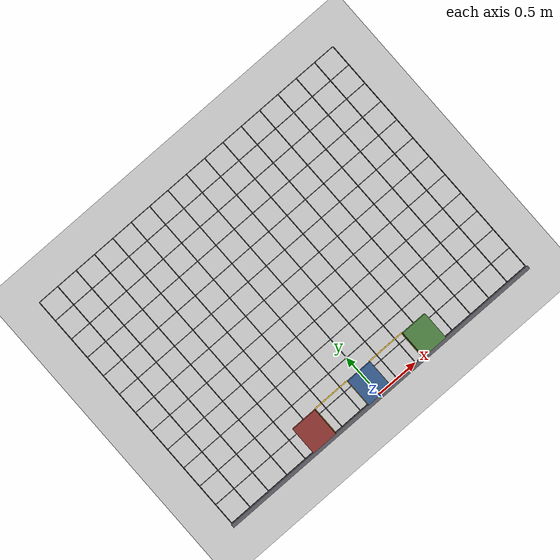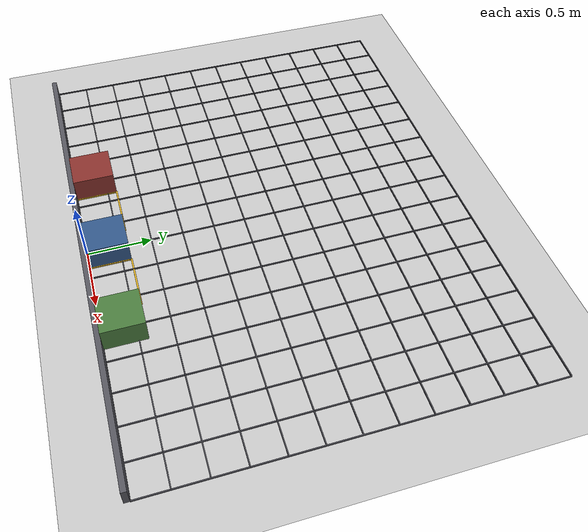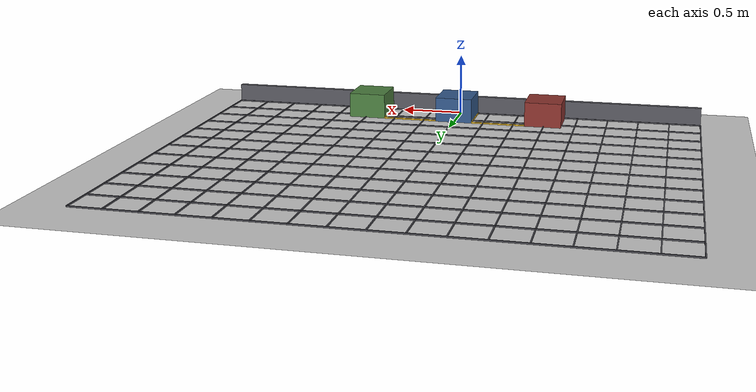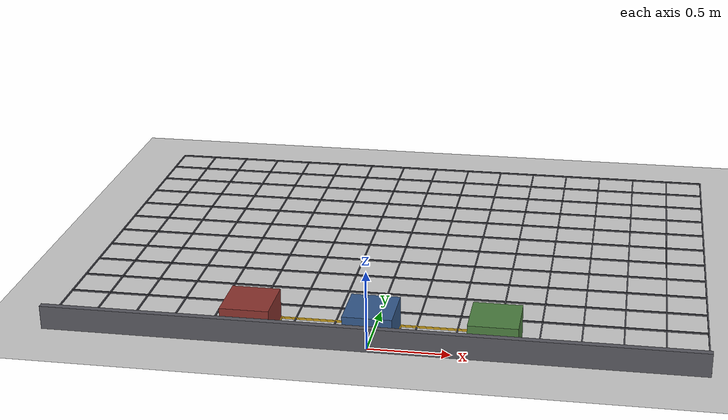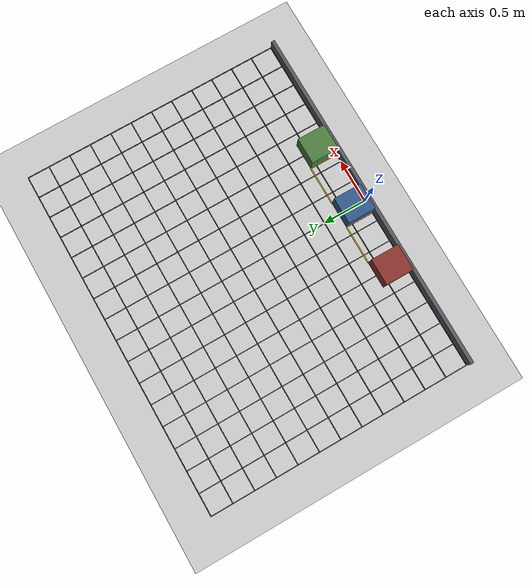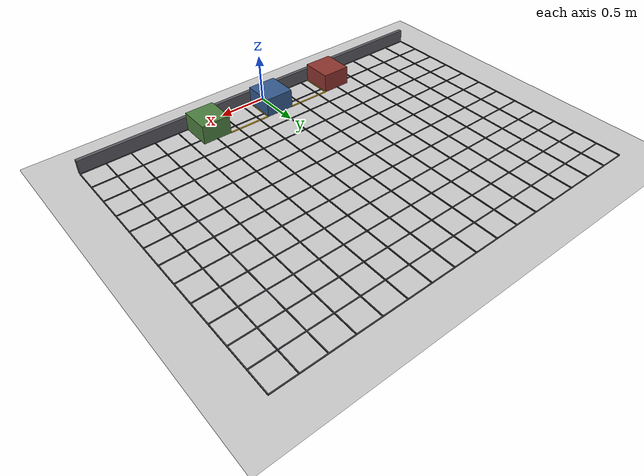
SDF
<?xml version='1.0'?>
<sdf version='1.6'>
  <world name='parking'>
    <include><uri>model://ground_plane</uri></include>
    <include><uri>model://sun</uri></include>

    <physics type='ode'>
      <real_time_update_rate>1000</real_time_update_rate>
      <max_step_size>0.001</max_step_size>
    </physics>

    <scene>
      <ambient>0.5 0.5 0.5 1</ambient>
      <shadows>false</shadows>
    </scene>
        <gui fullscreen='0'>
      <camera name='top_down'>
        <pose>0 0.16 2.2 0 1.5707 1.5707</pose>
        <projection_type>orthographic</projection_type>
      </camera>
    </gui>
        <plugin name='gazebo_ros_state' filename='libgazebo_ros_state.so'>
      <ros><namespace>/gazebo</namespace></ros>
      <update_rate>50</update_rate>
    </plugin>

  <model name='curb'>
    <static>true</static>
    <pose>0 -0.0200 0.075 0 0 0</pose>
    <link name='link'>
      <collision name='c'>
        <geometry><box><size>4.0 0.04 0.15</size></box></geometry>
      </collision>
      <visual name='v'>
        <geometry><box><size>4.0 0.04 0.15</size></box></geometry>
        <material>
          <ambient>0.35 0.35 0.38 1</ambient>
          <diffuse>0.35 0.35 0.38 1</diffuse>
        </material>
      </visual>
    </link>
  </model>
  <model name='parked_car_a'>
    <static>true</static>
    <pose>-0.7416 0.1600 0.1000 0 0 0</pose>
    <link name='link'>
      <collision name='c'>
        <geometry><box><size>0.3 0.32 0.2</size></box></geometry>
      </collision>
      <visual name='v'>
        <geometry><box><size>0.3 0.32 0.2</size></box></geometry>
        <material>
          <ambient>0.55 0.20 0.18 1</ambient>
          <diffuse>0.55 0.20 0.18 1</diffuse>
        </material>
      </visual>
    </link>
  </model>
  <model name='parked_car_b'>
    <static>true</static>
    <pose>0.0000 0.1600 0.1000 0 0 0</pose>
    <link name='link'>
      <collision name='c'>
        <geometry><box><size>0.3 0.32 0.2</size></box></geometry>
      </collision>
      <visual name='v'>
        <geometry><box><size>0.3 0.32 0.2</size></box></geometry>
        <material>
          <ambient>0.20 0.35 0.55 1</ambient>
          <diffuse>0.20 0.35 0.55 1</diffuse>
        </material>
      </visual>
    </link>
  </model>
  <model name='parked_car_c'>
    <static>true</static>
    <pose>0.7416 0.1600 0.1000 0 0 0</pose>
    <link name='link'>
      <collision name='c'>
        <geometry><box><size>0.3 0.32 0.2</size></box></geometry>
      </collision>
      <visual name='v'>
        <geometry><box><size>0.3 0.32 0.2</size></box></geometry>
        <material>
          <ambient>0.30 0.50 0.25 1</ambient>
          <diffuse>0.30 0.50 0.25 1</diffuse>
        </material>
      </visual>
    </link>
  </model>
  <model name='bay_mark_0_0'>
    <static>true</static>
    <pose>-0.3708 0.3200 0.006 0 0 0</pose>
    <link name='link'>
      <visual name='v'>
        <geometry><box><size>0.44160000000000005 0.012 0.01</size></box></geometry>
        <material>
          <ambient>0.95 0.75 0.15 1</ambient>
          <diffuse>0.95 0.75 0.15 1</diffuse>
        </material>
      </visual>
    </link>
  </model>
  <model name='bay_mark_0_1'>
    <static>true</static>
    <pose>-0.5916 0.1600 0.006 0 0 0</pose>
    <link name='link'>
      <visual name='v'>
        <geometry><box><size>0.012 0.32 0.01</size></box></geometry>
        <material>
          <ambient>0.95 0.75 0.15 1</ambient>
          <diffuse>0.95 0.75 0.15 1</diffuse>
        </material>
      </visual>
    </link>
  </model>
  <model name='bay_mark_0_2'>
    <static>true</static>
    <pose>-0.1500 0.1600 0.006 0 0 0</pose>
    <link name='link'>
      <visual name='v'>
        <geometry><box><size>0.012 0.32 0.01</size></box></geometry>
        <material>
          <ambient>0.95 0.75 0.15 1</ambient>
          <diffuse>0.95 0.75 0.15 1</diffuse>
        </material>
      </visual>
    </link>
  </model>
  <model name='bay_mark_1_0'>
    <static>true</static>
    <pose>0.3708 0.3200 0.006 0 0 0</pose>
    <link name='link'>
      <visual name='v'>
        <geometry><box><size>0.44160000000000005 0.012 0.01</size></box></geometry>
        <material>
          <ambient>0.95 0.75 0.15 1</ambient>
          <diffuse>0.95 0.75 0.15 1</diffuse>
        </material>
      </visual>
    </link>
  </model>
  <model name='bay_mark_1_1'>
    <static>true</static>
    <pose>0.1500 0.1600 0.006 0 0 0</pose>
    <link name='link'>
      <visual name='v'>
        <geometry><box><size>0.012 0.32 0.01</size></box></geometry>
        <material>
          <ambient>0.95 0.75 0.15 1</ambient>
          <diffuse>0.95 0.75 0.15 1</diffuse>
        </material>
      </visual>
    </link>
  </model>
  <model name='bay_mark_1_2'>
    <static>true</static>
    <pose>0.5916 0.1600 0.006 0 0 0</pose>
    <link name='link'>
      <visual name='v'>
        <geometry><box><size>0.012 0.32 0.01</size></box></geometry>
        <material>
          <ambient>0.95 0.75 0.15 1</ambient>
          <diffuse>0.95 0.75 0.15 1</diffuse>
        </material>
      </visual>
    </link>
  </model>
  <model name='grid_v_0'>
    <static>true</static>
    <pose>-2.0000 1.5000 0.006 0 0 0</pose>
    <link name='link'>
      <visual name='v'>
        <geometry><box><size>0.008 3.0 0.01</size></box></geometry>
        <material>
          <ambient>0.30 0.30 0.33 1</ambient>
          <diffuse>0.30 0.30 0.33 1</diffuse>
        </material>
      </visual>
    </link>
  </model>
  <model name='grid_v_1'>
    <static>true</static>
    <pose>-1.7500 1.5000 0.006 0 0 0</pose>
    <link name='link'>
      <visual name='v'>
        <geometry><box><size>0.008 3.0 0.01</size></box></geometry>
        <material>
          <ambient>0.30 0.30 0.33 1</ambient>
          <diffuse>0.30 0.30 0.33 1</diffuse>
        </material>
      </visual>
    </link>
  </model>
  <model name='grid_v_2'>
    <static>true</static>
    <pose>-1.5000 1.5000 0.006 0 0 0</pose>
    <link name='link'>
      <visual name='v'>
        <geometry><box><size>0.008 3.0 0.01</size></box></geometry>
        <material>
          <ambient>0.30 0.30 0.33 1</ambient>
          <diffuse>0.30 0.30 0.33 1</diffuse>
        </material>
      </visual>
    </link>
  </model>
  <model name='grid_v_3'>
    <static>true</static>
    <pose>-1.2500 1.5000 0.006 0 0 0</pose>
    <link name='link'>
      <visual name='v'>
        <geometry><box><size>0.008 3.0 0.01</size></box></geometry>
        <material>
          <ambient>0.30 0.30 0.33 1</ambient>
          <diffuse>0.30 0.30 0.33 1</diffuse>
        </material>
      </visual>
    </link>
  </model>
  <model name='grid_v_4'>
    <static>true</static>
    <pose>-1.0000 1.5000 0.006 0 0 0</pose>
    <link name='link'>
      <visual name='v'>
        <geometry><box><size>0.008 3.0 0.01</size></box></geometry>
        <material>
          <ambient>0.30 0.30 0.33 1</ambient>
          <diffuse>0.30 0.30 0.33 1</diffuse>
        </material>
      </visual>
    </link>
  </model>
  <model name='grid_v_5'>
    <static>true</static>
    <pose>-0.7500 1.5000 0.006 0 0 0</pose>
    <link name='link'>
      <visual name='v'>
        <geometry><box><size>0.008 3.0 0.01</size></box></geometry>
        <material>
          <ambient>0.30 0.30 0.33 1</ambient>
          <diffuse>0.30 0.30 0.33 1</diffuse>
        </material>
      </visual>
    </link>
  </model>
  <model name='grid_v_6'>
    <static>true</static>
    <pose>-0.5000 1.5000 0.006 0 0 0</pose>
    <link name='link'>
      <visual name='v'>
        <geometry><box><size>0.008 3.0 0.01</size></box></geometry>
        <material>
          <ambient>0.30 0.30 0.33 1</ambient>
          <diffuse>0.30 0.30 0.33 1</diffuse>
        </material>
      </visual>
    </link>
  </model>
  <model name='grid_v_7'>
    <static>true</static>
    <pose>-0.2500 1.5000 0.006 0 0 0</pose>
    <link name='link'>
      <visual name='v'>
        <geometry><box><size>0.008 3.0 0.01</size></box></geometry>
        <material>
          <ambient>0.30 0.30 0.33 1</ambient>
          <diffuse>0.30 0.30 0.33 1</diffuse>
        </material>
      </visual>
    </link>
  </model>
  <model name='grid_v_8'>
    <static>true</static>
    <pose>0.0000 1.5000 0.006 0 0 0</pose>
    <link name='link'>
      <visual name='v'>
        <geometry><box><size>0.008 3.0 0.01</size></box></geometry>
        <material>
          <ambient>0.30 0.30 0.33 1</ambient>
          <diffuse>0.30 0.30 0.33 1</diffuse>
        </material>
      </visual>
    </link>
  </model>
  <model name='grid_v_9'>
    <static>true</static>
    <pose>0.2500 1.5000 0.006 0 0 0</pose>
    <link name='link'>
      <visual name='v'>
        <geometry><box><size>0.008 3.0 0.01</size></box></geometry>
        <material>
          <ambient>0.30 0.30 0.33 1</ambient>
          <diffuse>0.30 0.30 0.33 1</diffuse>
        </material>
      </visual>
    </link>
  </model>
  <model name='grid_v_10'>
    <static>true</static>
    <pose>0.5000 1.5000 0.006 0 0 0</pose>
    <link name='link'>
      <visual name='v'>
        <geometry><box><size>0.008 3.0 0.01</size></box></geometry>
        <material>
          <ambient>0.30 0.30 0.33 1</ambient>
          <diffuse>0.30 0.30 0.33 1</diffuse>
        </material>
      </visual>
    </link>
  </model>
  <model name='grid_v_11'>
    <static>true</static>
    <pose>0.7500 1.5000 0.006 0 0 0</pose>
    <link name='link'>
      <visual name='v'>
        <geometry><box><size>0.008 3.0 0.01</size></box></geometry>
        <material>
          <ambient>0.30 0.30 0.33 1</ambient>
          <diffuse>0.30 0.30 0.33 1</diffuse>
        </material>
      </visual>
    </link>
  </model>
  <model name='grid_v_12'>
    <static>true</static>
    <pose>1.0000 1.5000 0.006 0 0 0</pose>
    <link name='link'>
      <visual name='v'>
        <geometry><box><size>0.008 3.0 0.01</size></box></geometry>
        <material>
          <ambient>0.30 0.30 0.33 1</ambient>
          <diffuse>0.30 0.30 0.33 1</diffuse>
        </material>
      </visual>
    </link>
  </model>
  <model name='grid_v_13'>
    <static>true</static>
    <pose>1.2500 1.5000 0.006 0 0 0</pose>
    <link name='link'>
      <visual name='v'>
        <geometry><box><size>0.008 3.0 0.01</size></box></geometry>
        <material>
          <ambient>0.30 0.30 0.33 1</ambient>
          <diffuse>0.30 0.30 0.33 1</diffuse>
        </material>
      </visual>
    </link>
  </model>
  <model name='grid_v_14'>
    <static>true</static>
    <pose>1.5000 1.5000 0.006 0 0 0</pose>
    <link name='link'>
      <visual name='v'>
        <geometry><box><size>0.008 3.0 0.01</size></box></geometry>
        <material>
          <ambient>0.30 0.30 0.33 1</ambient>
          <diffuse>0.30 0.30 0.33 1</diffuse>
        </material>
      </visual>
    </link>
  </model>
  <model name='grid_v_15'>
    <static>true</static>
    <pose>1.7500 1.5000 0.006 0 0 0</pose>
    <link name='link'>
      <visual name='v'>
        <geometry><box><size>0.008 3.0 0.01</size></box></geometry>
        <material>
          <ambient>0.30 0.30 0.33 1</ambient>
          <diffuse>0.30 0.30 0.33 1</diffuse>
        </material>
      </visual>
    </link>
  </model>
  <model name='grid_v_16'>
    <static>true</static>
    <pose>2.0000 1.5000 0.006 0 0 0</pose>
    <link name='link'>
      <visual name='v'>
        <geometry><box><size>0.008 3.0 0.01</size></box></geometry>
        <material>
          <ambient>0.30 0.30 0.33 1</ambient>
          <diffuse>0.30 0.30 0.33 1</diffuse>
        </material>
      </visual>
    </link>
  </model>
  <model name='grid_h_0'>
    <static>true</static>
    <pose>0 0.0000 0.006 0 0 0</pose>
    <link name='link'>
      <visual name='v'>
        <geometry><box><size>4.0 0.008 0.01</size></box></geometry>
        <material>
          <ambient>0.30 0.30 0.33 1</ambient>
          <diffuse>0.30 0.30 0.33 1</diffuse>
        </material>
      </visual>
    </link>
  </model>
  <model name='grid_h_1'>
    <static>true</static>
    <pose>0 0.2500 0.006 0 0 0</pose>
    <link name='link'>
      <visual name='v'>
        <geometry><box><size>4.0 0.008 0.01</size></box></geometry>
        <material>
          <ambient>0.30 0.30 0.33 1</ambient>
          <diffuse>0.30 0.30 0.33 1</diffuse>
        </material>
      </visual>
    </link>
  </model>
  <model name='grid_h_2'>
    <static>true</static>
    <pose>0 0.5000 0.006 0 0 0</pose>
    <link name='link'>
      <visual name='v'>
        <geometry><box><size>4.0 0.008 0.01</size></box></geometry>
        <material>
          <ambient>0.30 0.30 0.33 1</ambient>
          <diffuse>0.30 0.30 0.33 1</diffuse>
        </material>
      </visual>
    </link>
  </model>
  <model name='grid_h_3'>
    <static>true</static>
    <pose>0 0.7500 0.006 0 0 0</pose>
    <link name='link'>
      <visual name='v'>
        <geometry><box><size>4.0 0.008 0.01</size></box></geometry>
        <material>
          <ambient>0.30 0.30 0.33 1</ambient>
          <diffuse>0.30 0.30 0.33 1</diffuse>
        </material>
      </visual>
    </link>
  </model>
  <model name='grid_h_4'>
    <static>true</static>
    <pose>0 1.0000 0.006 0 0 0</pose>
    <link name='link'>
      <visual name='v'>
        <geometry><box><size>4.0 0.008 0.01</size></box></geometry>
        <material>
          <ambient>0.30 0.30 0.33 1</ambient>
          <diffuse>0.30 0.30 0.33 1</diffuse>
        </material>
      </visual>
    </link>
  </model>
  <model name='grid_h_5'>
    <static>true</static>
    <pose>0 1.2500 0.006 0 0 0</pose>
    <link name='link'>
      <visual name='v'>
        <geometry><box><size>4.0 0.008 0.01</size></box></geometry>
        <material>
          <ambient>0.30 0.30 0.33 1</ambient>
          <diffuse>0.30 0.30 0.33 1</diffuse>
        </material>
      </visual>
    </link>
  </model>
  <model name='grid_h_6'>
    <static>true</static>
    <pose>0 1.5000 0.006 0 0 0</pose>
    <link name='link'>
      <visual name='v'>
        <geometry><box><size>4.0 0.008 0.01</size></box></geometry>
        <material>
          <ambient>0.30 0.30 0.33 1</ambient>
          <diffuse>0.30 0.30 0.33 1</diffuse>
        </material>
      </visual>
    </link>
  </model>
  <model name='grid_h_7'>
    <static>true</static>
    <pose>0 1.7500 0.006 0 0 0</pose>
    <link name='link'>
      <visual name='v'>
        <geometry><box><size>4.0 0.008 0.01</size></box></geometry>
        <material>
          <ambient>0.30 0.30 0.33 1</ambient>
          <diffuse>0.30 0.30 0.33 1</diffuse>
        </material>
      </visual>
    </link>
  </model>
  <model name='grid_h_8'>
    <static>true</static>
    <pose>0 2.0000 0.006 0 0 0</pose>
    <link name='link'>
      <visual name='v'>
        <geometry><box><size>4.0 0.008 0.01</size></box></geometry>
        <material>
          <ambient>0.30 0.30 0.33 1</ambient>
          <diffuse>0.30 0.30 0.33 1</diffuse>
        </material>
      </visual>
    </link>
  </model>
  <model name='grid_h_9'>
    <static>true</static>
    <pose>0 2.2500 0.006 0 0 0</pose>
    <link name='link'>
      <visual name='v'>
        <geometry><box><size>4.0 0.008 0.01</size></box></geometry>
        <material>
          <ambient>0.30 0.30 0.33 1</ambient>
          <diffuse>0.30 0.30 0.33 1</diffuse>
        </material>
      </visual>
    </link>
  </model>
  <model name='grid_h_10'>
    <static>true</static>
    <pose>0 2.5000 0.006 0 0 0</pose>
    <link name='link'>
      <visual name='v'>
        <geometry><box><size>4.0 0.008 0.01</size></box></geometry>
        <material>
          <ambient>0.30 0.30 0.33 1</ambient>
          <diffuse>0.30 0.30 0.33 1</diffuse>
        </material>
      </visual>
    </link>
  </model>
  <model name='grid_h_11'>
    <static>true</static>
    <pose>0 2.7500 0.006 0 0 0</pose>
    <link name='link'>
      <visual name='v'>
        <geometry><box><size>4.0 0.008 0.01</size></box></geometry>
        <material>
          <ambient>0.30 0.30 0.33 1</ambient>
          <diffuse>0.30 0.30 0.33 1</diffuse>
        </material>
      </visual>
    </link>
  </model>
  <model name='grid_h_12'>
    <static>true</static>
    <pose>0 3.0000 0.006 0 0 0</pose>
    <link name='link'>
      <visual name='v'>
        <geometry><box><size>4.0 0.008 0.01</size></box></geometry>
        <material>
          <ambient>0.30 0.30 0.33 1</ambient>
          <diffuse>0.30 0.30 0.33 1</diffuse>
        </material>
      </visual>
    </link>
  </model>

  </world>
</sdf>
